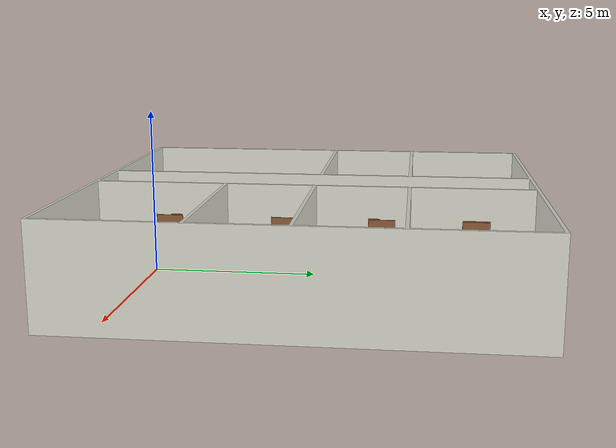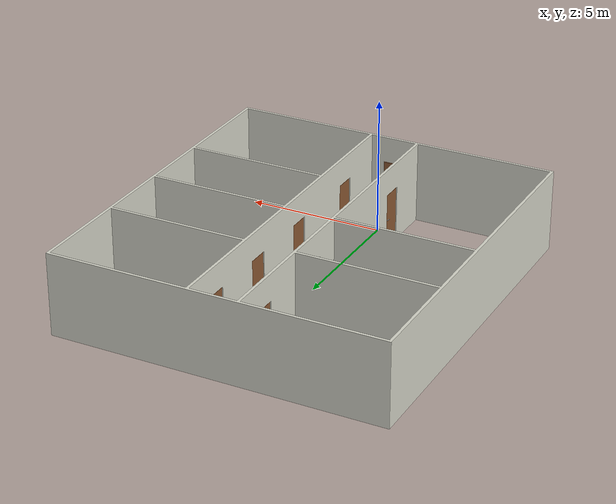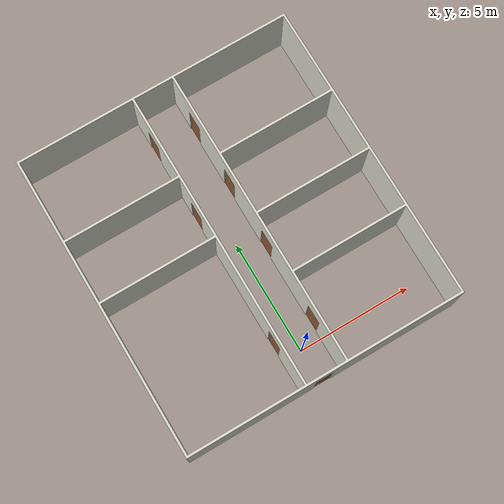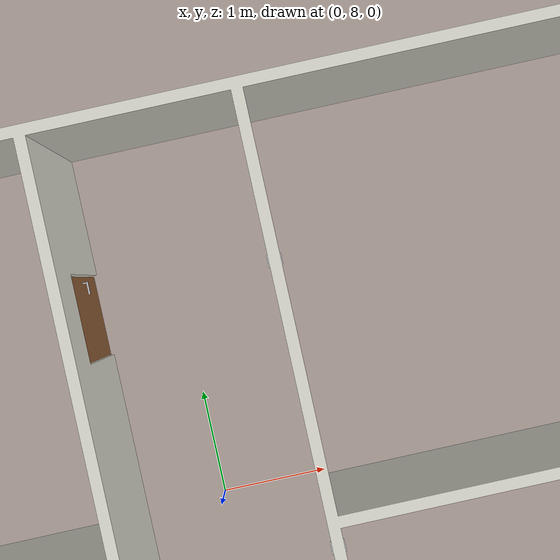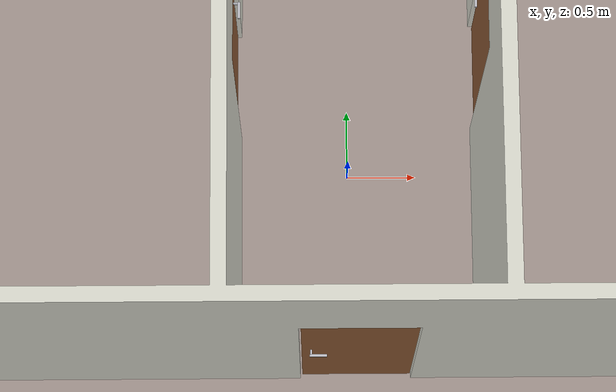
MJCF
<mujoco model="secoro_doors">
  <asset>
    <mesh name="secoro" file="meshes/uni-bremen_secoro.stl"/>
    <material name="wall" rgba="0.85 0.85 0.8 1"/>
    <material name="door" rgba="0.55 0.35 0.2 1"/>
    <material name="handle" rgba="0.75 0.75 0.78 1" specular="0.8" shininess="0.8"/>
  </asset>
  <default>
    <default class="door">
      <joint type="hinge" axis="0 0 1" range="0 90" damping="5" armature="0.1"/>
      <geom type="box" size="0.39 0.02 1" pos="0.395 0 1.005" mass="15" material="door"/>
      <position kp="20" ctrlrange="0 1.5708"/>
      <default class="handle">
        <!-- the levers point to the hinge, so pressing down is a negative turn about y -->
        <joint axis="0 1 0" range="-45 0" damping="0.05" armature="0.001"/>
        <geom type="box" size="0.06 0.008 0.01" mass="0.2" material="handle" contype="0" conaffinity="0"/>
        <position kp="1" ctrlrange="-0.785 0"/>
        <default class="spindle">
          <geom type="cylinder" size="0.008 0.06" pos="0 0 0" euler="90 0 0"/>
        </default>
        <default class="lever_front">
          <geom pos="-0.05 -0.06 0"/>
        </default>
        <default class="lever_back">
          <geom pos="-0.05 0.06 0"/>
        </default>
      </default>
    </default>
  </default>
  <worldbody>
    <!-- only the first root body is attached to a scene, so the doors hang below it -->
    <body name="secoro_doors">
      <body name="secoro" pos="-0.78 -1.5 0">
        <geom type="mesh" mesh="secoro" material="wall" contype="0" conaffinity="0"/>
      </body>
      <!-- body frame at the hinge jamb, x along the opening; opening swings to -normal -->
      <body name="door_1047" childclass="door" pos="0.97 0.376 0" euler="0 0 90">
        <joint name="door_1047"/><geom/>
        <body name="handle_1047" childclass="handle" pos="0.72 0 1.05">
          <joint name="handle_1047"/>
          <geom class="spindle"/><geom class="lever_front"/><geom class="lever_back"/>
        </body>
      </body>
      <body name="door_1111" childclass="door" pos="0.97 3.853 0" euler="0 0 90">
        <joint name="door_1111"/><geom/>
        <body name="handle_1111" childclass="handle" pos="0.72 0 1.05">
          <joint name="handle_1111"/>
          <geom class="spindle"/><geom class="lever_front"/><geom class="lever_back"/>
        </body>
      </body>
      <body name="door_1160" childclass="door" pos="0.97 6.717 0" euler="0 0 90">
        <joint name="door_1160"/><geom/>
        <body name="handle_1160" childclass="handle" pos="0.72 0 1.05">
          <joint name="handle_1160"/>
          <geom class="spindle"/><geom class="lever_front"/><geom class="lever_back"/>
        </body>
      </body>
      <body name="door_1209" childclass="door" pos="0.97 9.438 0" euler="0 0 90">
        <joint name="door_1209"/><geom/>
        <body name="handle_1209" childclass="handle" pos="0.72 0 1.05">
          <joint name="handle_1209"/>
          <geom class="spindle"/><geom class="lever_front"/><geom class="lever_back"/>
        </body>
      </body>
      <body name="door_1258" childclass="door" pos="-0.83 0.301 0" euler="0 0 90">
        <joint name="door_1258"/><geom/>
        <body name="handle_1258" childclass="handle" pos="0.72 0 1.05">
          <joint name="handle_1258"/>
          <geom class="spindle"/><geom class="lever_front"/><geom class="lever_back"/>
        </body>
      </body>
      <body name="door_1307" childclass="door" pos="-0.83 6.208 0" euler="0 0 90">
        <joint name="door_1307"/><geom/>
        <body name="handle_1307" childclass="handle" pos="0.72 0 1.05">
          <joint name="handle_1307"/>
          <geom class="spindle"/><geom class="lever_front"/><geom class="lever_back"/>
        </body>
      </body>
      <body name="door_1356" childclass="door" pos="-0.83 9.555 0" euler="0 0 90">
        <joint name="door_1356"/><geom/>
        <body name="handle_1356" childclass="handle" pos="0.72 0 1.05">
          <joint name="handle_1356"/>
          <geom class="spindle"/><geom class="lever_front"/><geom class="lever_back"/>
        </body>
      </body>
      <body name="door_1627" childclass="door" pos="0.447 -1.45 0" euler="0 0 180">
        <joint name="door_1627"/><geom/>
        <body name="handle_1627" childclass="handle" pos="0.72 0 1.05">
          <joint name="handle_1627"/>
          <geom class="spindle"/><geom class="lever_front"/><geom class="lever_back"/>
        </body>
      </body>
    </body>
  </worldbody>
  <actuator>
    <position class="door" name="door_1047" joint="door_1047"/>
    <position class="door" name="door_1111" joint="door_1111"/>
    <position class="door" name="door_1160" joint="door_1160"/>
    <position class="door" name="door_1209" joint="door_1209"/>
    <position class="door" name="door_1258" joint="door_1258"/>
    <position class="door" name="door_1307" joint="door_1307"/>
    <position class="door" name="door_1356" joint="door_1356"/>
    <position class="door" name="door_1627" joint="door_1627"/>
    <position class="handle" name="handle_1047" joint="handle_1047"/>
    <position class="handle" name="handle_1111" joint="handle_1111"/>
    <position class="handle" name="handle_1160" joint="handle_1160"/>
    <position class="handle" name="handle_1209" joint="handle_1209"/>
    <position class="handle" name="handle_1258" joint="handle_1258"/>
    <position class="handle" name="handle_1307" joint="handle_1307"/>
    <position class="handle" name="handle_1356" joint="handle_1356"/>
    <position class="handle" name="handle_1627" joint="handle_1627"/>
  </actuator>
</mujoco>
